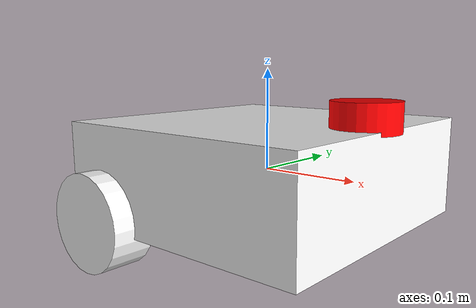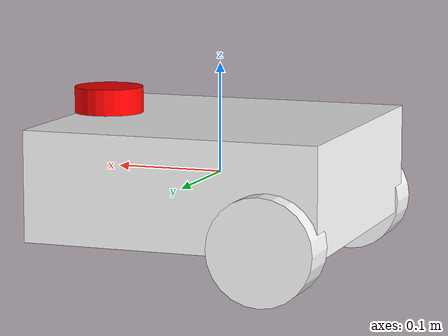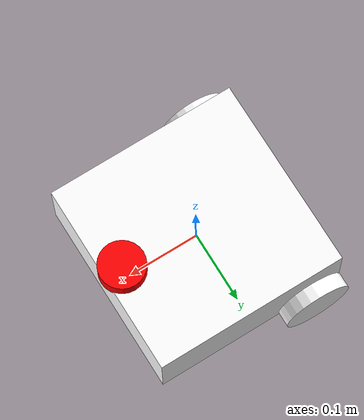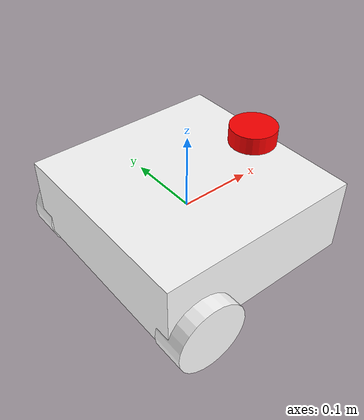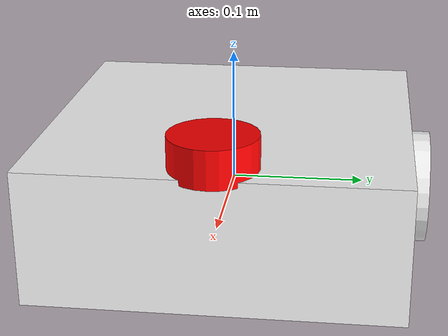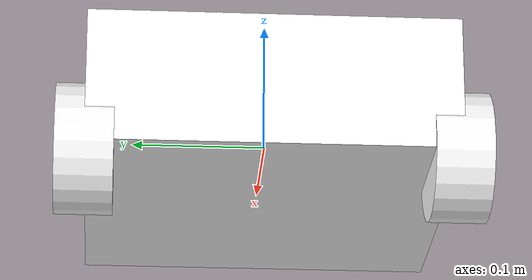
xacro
<?xml version="1.0"?>

<robot name="hands_free" xmlns:xacro="http://www.ros.org/wiki/xacro">
    <material name="red">
        <color rgba="1.0 0.0 0.0 1.0"/>
    </material>

    <material name="black">
        <color rgba="0.0 0.0 0.0 1.0"/>
    </material>

    <material name="white">
        <color rgba="1.0 1.0 1.0 1.0"/>
    </material>

    <material name="blue">
        <color rgba="0.0 0.0 1.0 1.0"/>
    </material>

    <link name="base_link">
    </link>

    <link name="base_footprint">
    </link>

    <joint name="base_footprint_joint" type="fixed">
      <parent link="base_link"/>
      <child link="base_footprint"/>
    </joint>

    <joint name="base_chassis" type="fixed">
        <origin xyz="0.0 0.0 0.0" rpy="0.0 0.0 0.0"/>
        <parent link="base_link"/>
        <child link="chassis_link"/>
    </joint>

    <link name="chassis_link">
        <visual>
            <material name="white"/>
            <origin xyz="0.0 0.0 0.0" rpy="0.0 0.0 0.0"/>
            <geometry>
                <box size="0.27 0.27 0.1"/>
            </geometry>
        </visual>
    </link>

    <xacro:macro name="wheel" params="name xyz rpy">
        <link name="${name}">
            <visual>
                <material name="white"/>
                <origin xyz="${xyz}" rpy="${rpy}"/>
                <geometry>
                    <cylinder radius="0.0475" length="0.042"/>
                </geometry>
            </visual>
        </link>
    </xacro:macro>

    <xacro:macro name="wheel_joint" params="name parent child xyz rpy">
        <joint name="${name}" type="continuous">
            <origin xyz="${xyz}" rpy="${rpy}"/>
            <parent link="${parent}"/>
            <child link="${child}"/>
        </joint>
    </xacro:macro>

    <link name="lidar_link">
        <visual>
          <origin xyz="0.0 0.0 0.0" rpy="0.0 0.0 0.0"/>
          <geometry>
            <cylinder radius="0.032" length="0.028"/>
          </geometry>
          <material name="red"/>
        </visual>
    </link>

    <joint name="lidar_joint" type="fixed">
      <origin xyz="0.110 0.0 0.06" rpy="0.0 0.0 0.0"/>
      <parent link="base_link"/>
      <child link="lidar_link"/>
    </joint>

    <xacro:wheel_joint name="back_left_wheel_joint" xyz="-0.090 -0.135 -0.040" rpy="0 0 0" parent="chassis_link" child="back_left_wheel"/>
    <xacro:wheel name="back_left_wheel" xyz="0.0 0.0 0.0" rpy="0.0 1.57 1.57"/>

    <xacro:wheel_joint name="back_right_wheel_joint" xyz="-0.090 0.135 -0.040" rpy="0 0 0" parent="chassis_link" child="back_right_wheel"/>
    <xacro:wheel name="back_right_wheel" xyz="0.0 0.0 0.0" rpy="0.0 1.57 1.57"/>

</robot>
